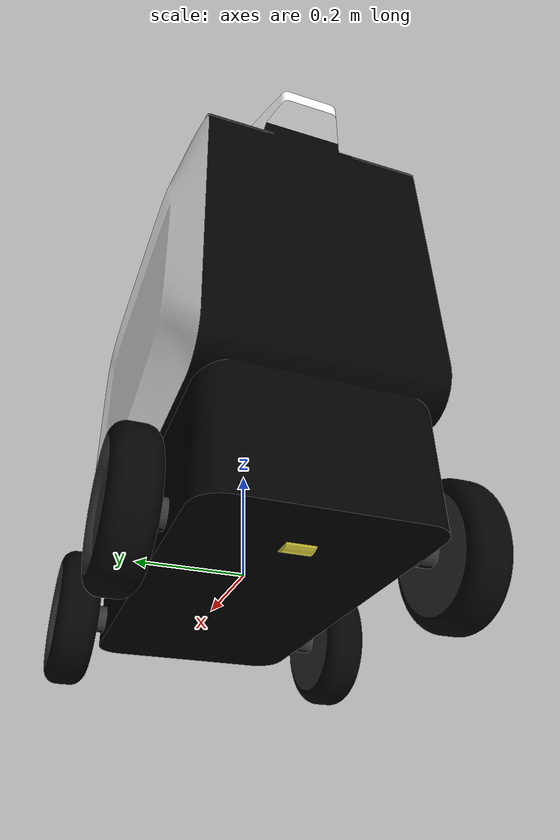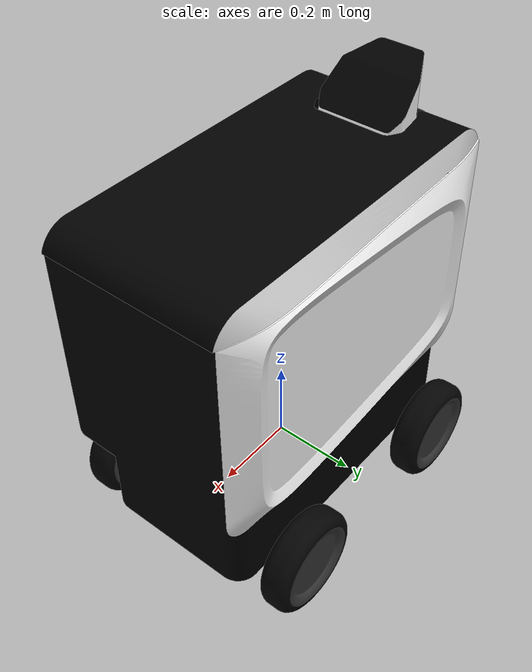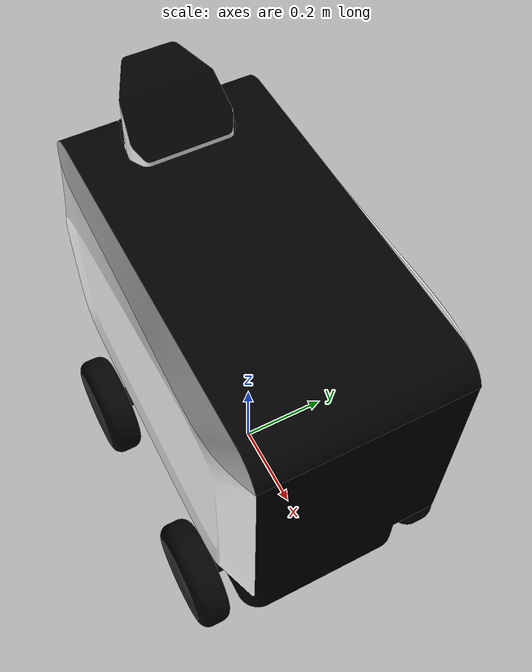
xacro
<?xml version="1.0"?>

<robot name="deliverybot" xmlns:xacro="http://wiki.ros.org/xacro">
    <xacro:include filename="$(find deliverybot_description)/robot/deliverybot_wheel.xacro" />
    <xacro:include filename="$(find deliverybot_description)/robot/deliverybot_control.xacro" />
    <xacro:property name="robot_namespace" value="/deliverybot" />

    <!-- Gazebo Plugins -->
    <gazebo>
        <plugin name="gazebo_ros2_control" filename="libgazebo_ros2_control.so">
            <robotNamespace>${robot_namespace}</robotNamespace>
            <parameters>$(find deliverybot_description)/config/deliverybot_controller.yaml</parameters>
        </plugin>
    </gazebo>

    <!-- Math Constants -->
    <xacro:property name="deg_to_rad" value="0.01745329251994329577" />
    <xacro:property name="steer_limhigh_deg" value="30" />
    <xacro:property name="steer_limlow_deg" value="-30" />
    <!-- Robot Base Dimensions -->
    <xacro:property name="base_length" value="0.85" />
    <xacro:property name="base_width" value="0.30" />
    <xacro:property name="base_length" value="0.75" />
    <xacro:property name="base_mass" value="72.3" />

    <!-- Wheel Link Dimensions -->
    <xacro:property name="wheel_radius" value="0.125" />
    <xacro:property name="wheel_thickness" value="0.1" />
    <xacro:property name="wheel_mass" value="3.5" />

    <!-- Steering Link Dimensions -->
    <xacro:property name="steer_radius" value="0.1" />
    <xacro:property name="steer_thickness" value="0.02" />
    <xacro:property name="steer_mass" value="1" />

    <!-- Velocity and Movement -->
    <xacro:property name="velocity_limlow" value="-5.0"/>
    <xacro:property name="velocity_limhigh" value="8.0"/>

    <!-- Axle Positions -->
    <xacro:property name="axle_offset" value="0.125" />
    <xacro:property name="steer_offset" value="-0.15" />
    <!-- Dummy Link -->
    <link name="dummy" />
    <!-- Base Link -->
    <link name="base_link">
        <visual>
            <origin xyz="0 0 0.40" rpy="0 0 -1.57" />
            <geometry>
                <mesh filename="package://deliverybot_description/meshes/EVA_Body.dae" />
            </geometry>
        </visual>
        <collision>
            <origin xyz="0 0 0.40" rpy="0 0 -1.57" />
            <geometry>
                <mesh filename="package://deliverybot_description/meshes/EVA_Body.dae" />
            </geometry>
        </collision>
        <inertial>
            <origin xyz="0 0 0" rpy="0 0 0" />
            <mass value="64.3" />
            <inertia ixx="8.303" ixy="0" ixz="0" iyy="5.468" iyz="0.075" izz="6.02" />
        </inertial>
    </link>
    <!-- Dummy Joint -->
    <joint name="dummy_joint" type="fixed">
        <parent link="dummy" />
        <child link="base_link" />
    </joint>

    <!-- Front steer and rear wheel joints required for ackermann_steering_controller -->
    <xacro:front_steer
        name="front"
        parent="base"
        steer_radius="${steer_radius}"
        steer_thickness="${steer_thickness}"
        steer_mass="${steer_mass}"
        base_length="${base_length}"
        base_width="${base_width}"
        axle_offset="${axle_offset}"
        steer_height="${wheel_radius+steer_offset}">
    </xacro:front_steer>

    <xacro:rear_wheel
        name="rear"
        parent="base"
        steer_radius="${steer_radius}"
        steer_thickness="${steer_thickness}"
        steer_mass="${steer_mass}"
        wheel_radius="${wheel_radius}"
        wheel_thickness="${wheel_thickness}"
        wheel_mass="${wheel_mass/32}"
        base_length="${base_length}"
        base_width="${base_width}"
        axle_offset="${axle_offset}"
        steer_height="${wheel_radius+steer_offset}">
    </xacro:rear_wheel>

    <!-- Steerable Front Wheels -->
    <xacro:front_wheel_lr
        name="front_right"
        parent="base"
        reflect="-1"
        wheel_radius="${wheel_radius}"
        wheel_thickness="${wheel_thickness}"
        wheel_mass="${wheel_mass}"
        steer_radius="${steer_radius}"
        steer_thickness="${steer_thickness}"
        steer_mass="${steer_mass}"
        base_length="${base_length}"
        base_width="${base_width}"
        axle_offset="${axle_offset}"
        steer_height="${wheel_radius+steer_offset}"
        model_rotate="-1.57">
        <origin xyz="0 0 0" rpy="${-90 * deg_to_rad} 0 0" />
    </xacro:front_wheel_lr>

    <xacro:front_wheel_lr
        name="front_left"
        parent="base"
        reflect="1"
        wheel_radius="${wheel_radius}"
        wheel_thickness="${wheel_thickness}"
        wheel_mass="${wheel_mass}"
        steer_radius="${steer_radius}"
        steer_thickness="${steer_thickness}"
        steer_mass="${steer_mass}"
        base_length="${base_length}"
        base_width="${base_width}"
        axle_offset="${axle_offset}"
        steer_height="${wheel_radius+steer_offset}"
        model_rotate="1.57">
        <origin xyz="0 0 0" rpy="${-90 * deg_to_rad} 0 0" />
    </xacro:front_wheel_lr>

    <!--Rear
    Wheels -->
    <xacro:rear_wheel_lr
        name="rear_right"
        parent="base"
        reflect="-1"
        wheel_radius="${wheel_radius}"
        wheel_thickness="${wheel_thickness}"
        wheel_mass="${wheel_mass}"
        model_rotate="-1.57"
        base_length="${base_length}"
        base_width="${base_width}"
        axle_offset="${axle_offset}"
        steer_height="${wheel_radius+steer_offset}">
    </xacro:rear_wheel_lr>
    <xacro:rear_wheel_lr
        name="rear_left"
        parent="base"
        reflect="1"
        wheel_radius="${wheel_radius}"
        wheel_thickness="${wheel_thickness}"
        wheel_mass="${wheel_mass}"
        model_rotate="1.57"
        base_length="${base_length}"
        base_width="${base_width}"
        axle_offset="${axle_offset}"
        steer_height="${wheel_radius+steer_offset}">
    </xacro:rear_wheel_lr>
    <xacro:door
        name="door"
        parent="base">
    </xacro:door>
    <ros2_control name="GazeboSystem" type="system">
        <hardware>
            <plugin>gazebo_ros2_control/GazeboSystem</plugin>
        </hardware>
        <xacro:steering_control
            name="front_right"
            steer_limlow="${steer_limlow_deg * deg_to_rad}"
            steer_limhigh="${steer_limhigh_deg * deg_to_rad}" />
        <xacro:steering_control
            name="front_left"
            steer_limlow="${steer_limlow_deg * deg_to_rad}"
            steer_limhigh="${steer_limhigh_deg * deg_to_rad}" />
        <xacro:door_control
            name="door"
            door_limlow="${0 * deg_to_rad}"
            door_limhigh="${90 * deg_to_rad}" />
        <xacro:velocity_control
            name="rear_left"
            velocity_limlow="${velocity_limlow}"
            velocity_limhigh="${velocity_limhigh}"/>
        <xacro:velocity_control
            name="rear_right"
            velocity_limlow="${velocity_limlow}"
            velocity_limhigh="${velocity_limhigh}"/>

    </ros2_control>

</robot>

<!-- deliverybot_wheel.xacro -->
<robot name="deliverybot_wheel" xmlns:xacro="http://wiki.ros.org/xacro">
    <xacro:property name="steer_effort" value="10.0" />
    <xacro:property name="steer_velocity"
        value="5.0" />
    <xacro:property name="steer_limit_deg" value="35.0" />

    <!-- Bicycle model front steering link (required for the steer drive controller) -->
    <xacro:macro name="front_steer"
        params="
        name
        parent
        steer_radius
        steer_thickness
        steer_mass
        base_length
        base_width
        axle_offset
        steer_height">
        <link name="${name}_steer_link">
            <visual>
                <origin xyz="0 0 0" rpy="0 0 0" />
                <geometry>
                    <cylinder radius="${steer_radius}" length="${steer_thickness}" />
                </geometry>
            </visual>
            <collision>
                <origin xyz="0 0 0" rpy="0 0 0" />
                <geometry>
                    <cylinder radius="${steer_radius}" length="${steer_thickness}" />
                </geometry>
            </collision>
            <inertial>
                <origin rpy="0 0 0" xyz="0 0 0" />
                <mass value="${steer_mass}" />
                <inertia
                    ixx="${steer_mass * (3.0 * steer_radius * steer_radius + steer_thickness * steer_thickness) / 12.0}"
                    ixy="0.0" ixz="0.0"
                    iyy="${steer_mass * (3.0 * steer_radius * steer_radius + steer_thickness * steer_thickness) / 12.0}"
                    iyz="0.0"
                    izz="${steer_mass * (steer_radius * steer_radius) / 2.0}" />
            </inertial>
        </link>
        <joint name="${name}_steer_joint" type="revolute">
            <parent link="${parent}_link" />
            <child link="${name}_steer_link" />
            <origin xyz="${base_length/2-axle_offset} 0 ${steer_height}" rpy="0 0 0" />
            <axis xyz="0 0 1" />
            <limit effort="${steer_effort}"
                lower="${-180.0 * deg_to_rad}" upper="${180.0 * deg_to_rad}"
                velocity="${steer_velocity}" />
        </joint>
    </xacro:macro>
    <xacro:macro name="rear_wheel"
        params="
            name
            parent
            steer_radius
            steer_thickness
            steer_mass
            wheel_radius
            wheel_thickness
            wheel_mass
            base_length
            base_width
            axle_offset
            steer_height">
        <link name="${name}_wheel_link">
            <visual>
                <origin xyz="0 0 0" rpy="0 0 0" />
                <geometry>
                    <cylinder radius="${wheel_radius/4}" length="${wheel_thickness/2}" />
                </geometry>
            </visual>
            <collision>
                <origin xyz="0 0 0" rpy="0 0 0" />
                <geometry>
                    <cylinder radius="${wheel_radius/4}" length="${wheel_thickness/2}" />
                </geometry>
            </collision>
            <inertial>
                <origin rpy="0 0 0" xyz="0 0 0" />
                <mass value="${steer_mass}" />
                <inertia
                    ixx="${steer_mass * (3.0 * steer_radius * steer_radius + steer_thickness * steer_thickness) / 12.0}"
                    ixy="0.0" ixz="0.0"
                    iyy="${steer_mass * (3.0 * steer_radius * steer_radius + steer_thickness * steer_thickness) / 12.0}"
                    iyz="0.0"
                    izz="${steer_mass * (steer_radius * steer_radius) / 2.0}" />
            </inertial>
        </link>

        <joint name="${name}_wheel_joint" type="continuous">
            <parent link="${parent}_link" />
            <child link="${name}_wheel_link" />
            <origin xyz="${-base_length/2+axle_offset} 0 ${steer_height}"
                rpy="${-90 * deg_to_rad} 0 0" />
            <axis xyz="0 1 0" />
        </joint>
    </xacro:macro>
    <!-- Front Steering Links Xacro -->
    <xacro:macro
        name="front_wheel_lr"
        params="
        name
        parent
        reflect
        wheel_radius
        wheel_thickness
        wheel_mass
        steer_radius
        steer_thickness
        steer_mass
        base_length
        base_width
        axle_offset
        steer_height
        model_rotate
        *origin">
        <link name="${name}_steer_link">
            <inertial>
                <origin rpy="0 0 0" xyz="0 0 0" />
                <mass value="${steer_mass}" />
                <inertia
                    ixx="${steer_mass * (3.0 * steer_radius * steer_radius + steer_thickness * steer_thickness) / 12.0}"
                    ixy="0.0" ixz="0.0"
                    iyy="${steer_mass * (3.0 * steer_radius * steer_radius + steer_thickness * steer_thickness) / 12.0}"
                    iyz="0.0"
                    izz="${steer_mass * (steer_radius * steer_radius) / 2.0}" />
            </inertial>
        </link>
        <joint name="${name}_steer_joint" type="revolute">
            <parent link="${parent}_link" />
            <child link="${name}_steer_link" />
            <origin
                xyz="${base_length/2-axle_offset} ${reflect*(base_width/2+axle_offset)} ${steer_height}"
                rpy="0 0 0" />
            <axis xyz="0 0 1" />
            <limit effort="${steer_effort}"
                lower="${steer_limit_deg * deg_to_rad * -1.0}"
                upper="${steer_limit_deg * deg_to_rad}"
                velocity="${steer_velocity}" />
        </joint>
        <link name="${name}_wheel_link">
            <visual>
                <origin xyz="0 0 0" rpy="0 ${model_rotate} 1.57" />
                <geometry>
                    <mesh filename="package://deliverybot_description/meshes/EVA_Wheel.dae" />
                </geometry>
            </visual>
            <collision>
                <origin xyz="0 0 0" rpy="0 ${model_rotate} 1.57" />
                <geometry>
                    <mesh filename="package://deliverybot_description/meshes/EVA_Wheel.dae" />
                </geometry>
            </collision>
            <inertial>
                <origin xyz="0 0 0" rpy="0 ${model_rotate} 1.57" />
                <mass value="3.512" />
                <inertia ixx="0.02665" ixy="0" ixz="0" iyy="0.0148" iyz="0" izz="0.01479" />
            </inertial>
        </link>
        <joint name="${name}_wheel_joint" type="continuous">
            <parent link="${name}_steer_link" />
            <child link="${name}_wheel_link" />
            <xacro:insert_block name="origin" />
            <axis xyz="0 0 1" />
        </joint>
        <gazebo reference="${name}_steer_link">
            <mu1 value="2.0" />
            <mu2 value="2.0" />
            <kp value="10000000.0" />
            <kd value="1.0" />
            <fdir1 value="0 1 0" />
        </gazebo>

        <gazebo reference="${name}_wheel_link">
            <mu1 value="2.0" />
            <mu2 value="2.0" />
            <kp value="10000000.0" />
            <kd value="1.0" />
            <fdir1 value="0 1 0" />
        </gazebo>
    </xacro:macro>
    <!-- Rear Wheel Links -->
    <xacro:macro
        name="rear_wheel_lr"
        params="
        name
        parent
        reflect
        wheel_radius
        wheel_thickness
        wheel_mass
        model_rotate
        base_length
        base_width
        axle_offset
        steer_height">
        <link name="${name}_wheel_link">
            <visual>
                <origin xyz="0 0 0" rpy="0 ${model_rotate} 1.57" />
                <geometry>
                    <mesh filename="package://deliverybot_description/meshes/EVA_Wheel.dae" />
                </geometry>
            </visual>
            <collision>
                <origin xyz="0 0 0" rpy="0 ${model_rotate} 1.57" />
                <geometry>
                    <mesh filename="package://deliverybot_description/meshes/EVA_Wheel.dae" />
                </geometry>
            </collision>
            <inertial>
                <origin xyz="0 0 0" rpy="0 0 0" />
                <mass value="3.512" />
                <inertia ixx="0.02665" ixy="0" ixz="0" iyy="0.0148" iyz="0" izz="0.01479" />
            </inertial>
        </link>
        <joint name="${name}_wheel_joint" type="continuous">
            <parent link="${parent}_link" />
            <child link="${name}_wheel_link" />
            <origin xyz="${-base_length/2+axle_offset} ${reflect*(base_width/2+axle_offset)} ${steer_height}"
                rpy="${-90 * deg_to_rad} 0 0" />
            <axis xyz="0 0 1" />
        </joint>
        <gazebo reference="${name}_wheel_link">
            <mu1 value="2.0" />
            <mu2 value="2.0" />
            <kp value="10000000.0" />
            <kd value="1.0" />
            <fdir1 value="0 1 0" />
        </gazebo>
    </xacro:macro>
    <xacro:macro name="door"
        params="
        name
        parent">
        <link name="${name}_link">
            <visual>
                <geometry>
                    <mesh filename="package://deliverybot_description/meshes/EVA_Lid.dae" />
                </geometry>
                <origin rpy="0 0 -1.57" xyz="0.425 0 0" />
            </visual>
            <collision>
                <origin rpy="0 0 -1.57" xyz="0.425 0 0" />
                <geometry>
                    <mesh filename="package://deliverybot_description/meshes/EVA_Lid.dae" />
                </geometry>
            </collision>
            <inertial>
                <origin rpy="0 0 -1.57" xyz="0 0 0" />
                <mass value="8" />
                <inertia ixx="0.4381" ixy="0" ixz="0" iyy="0.1637" iyz="0.005" izz="0.6" />
            </inertial>
        </link>
        <joint name="${name}_joint" type="revolute">
            <limit lower="-1.57" upper="0" effort="100" velocity="0.5" />
            <origin rpy="0 0 0" xyz="-0.4375 0 0.725" />
            <parent link="${parent}_link" />
            <child link="${name}_link" />
            <axis xyz="0 1 0" rpy="0 0 0" />
        </joint>
    </xacro:macro>
</robot>
